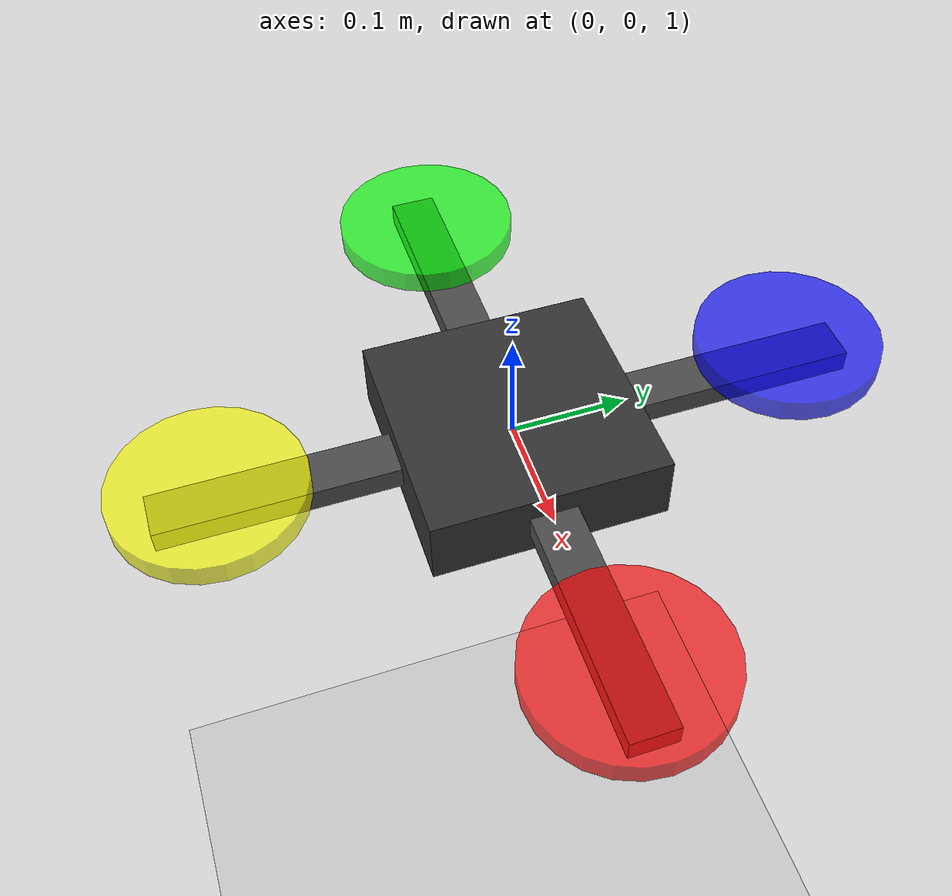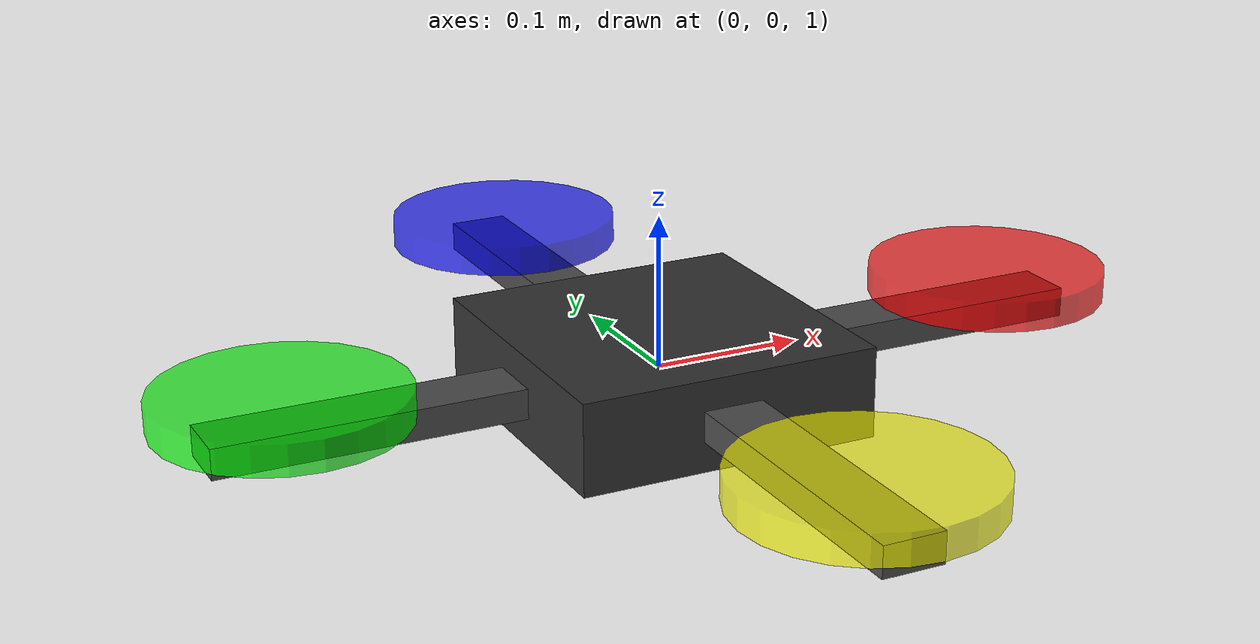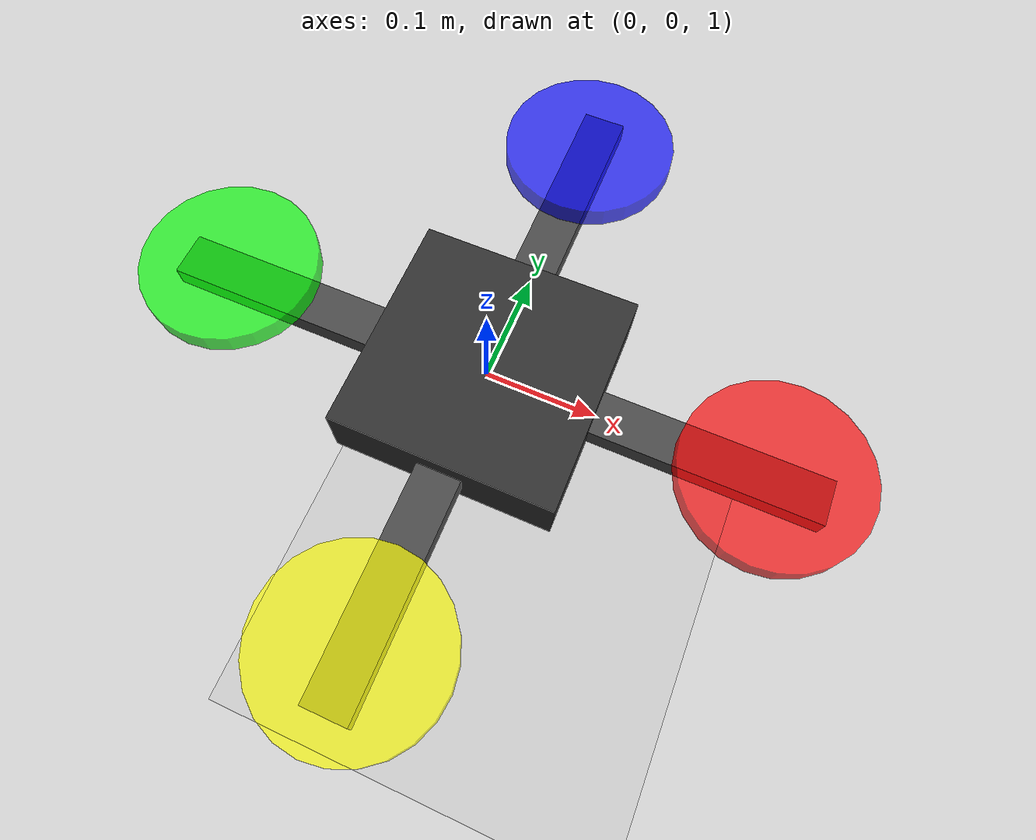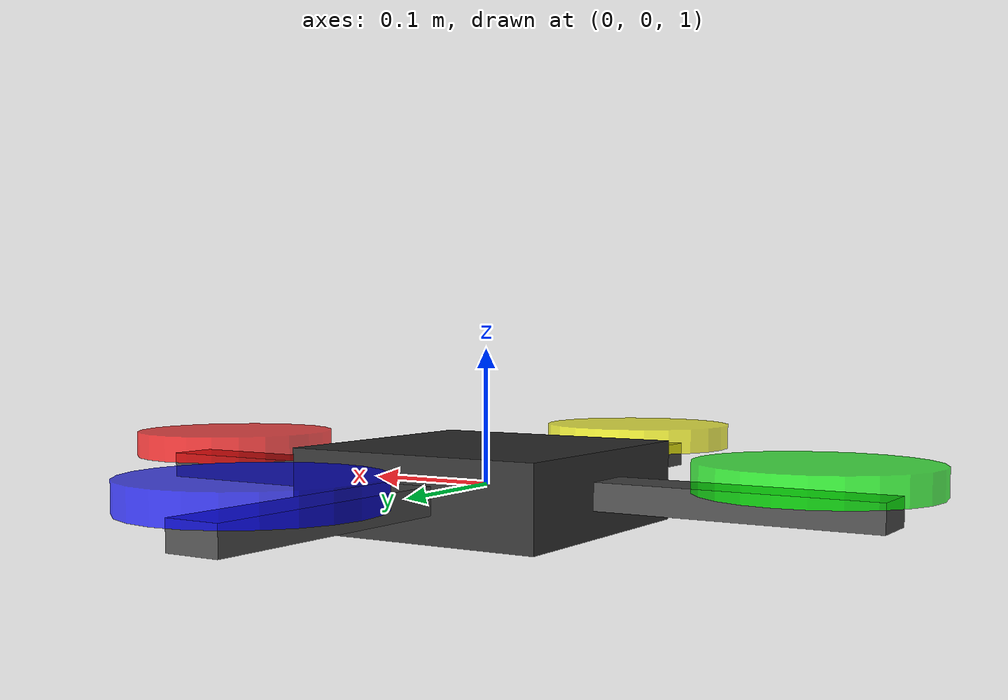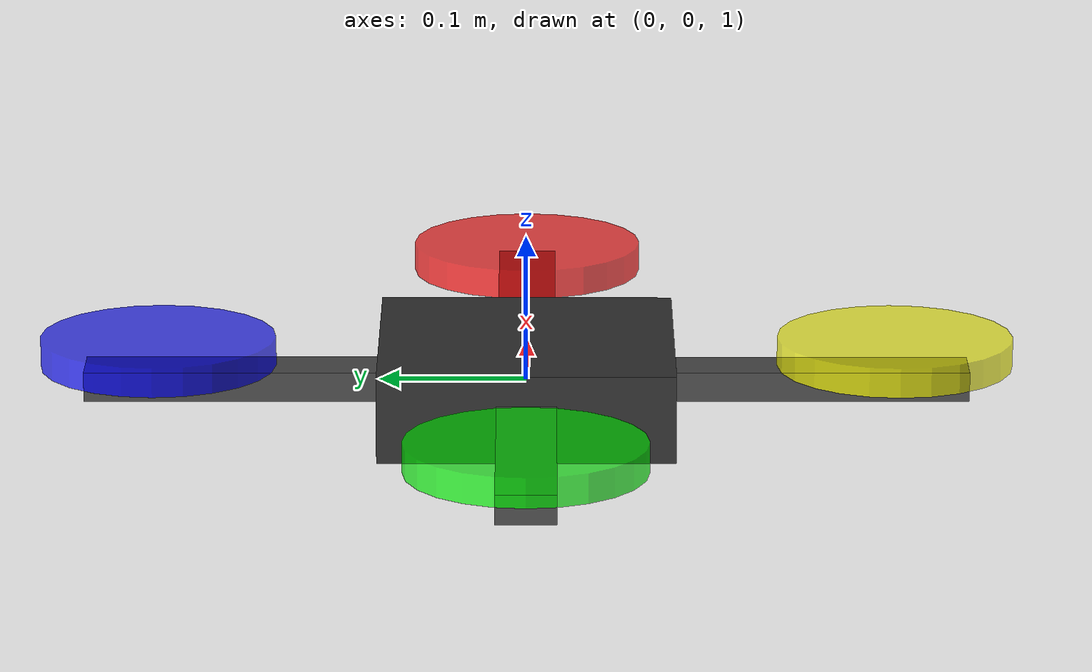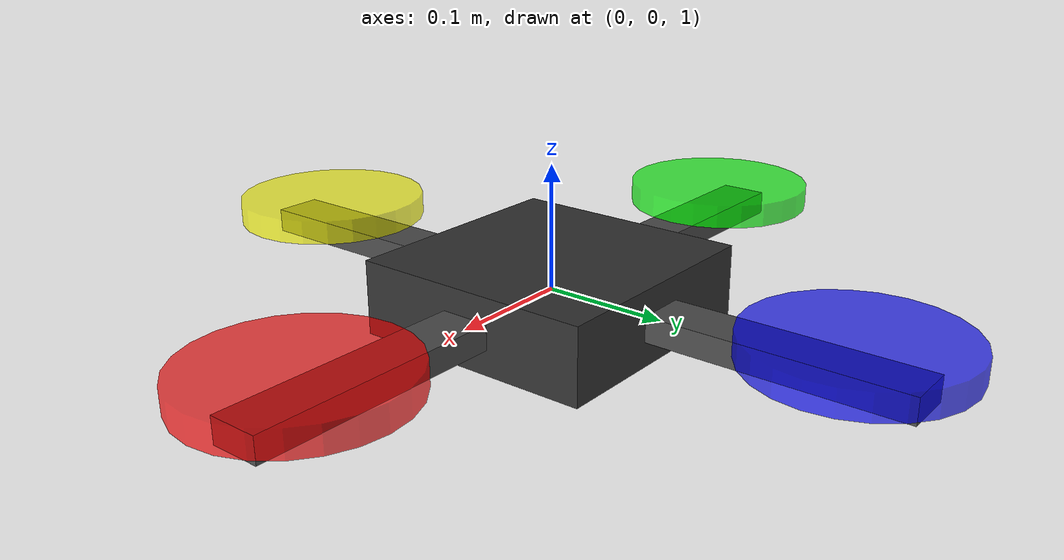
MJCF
<mujoco>
  <option gravity="0 0 -9.81" timestep="0.002"/>

  <worldbody>
    <!-- Ground plane -->
    <geom name="ground" type="plane" size="20 20 0.1" rgba="0.8 0.8 0.8 1"/>

    <!-- Drone body -->
    <body name="drone" pos="0 0 1">
      <freejoint/>

      <!-- Main body (central box) -->
      <geom name="body" type="box" size="0.1 0.1 0.03" rgba="0.2 0.2 0.2 1" mass="0.5"/>

      <!-- Four arms -->
      <geom name="arm1" type="box" size="0.15 0.02 0.01" pos="0.15 0 0" rgba="0.3 0.3 0.3 1" mass="0.05"/>
      <geom name="arm2" type="box" size="0.15 0.02 0.01" pos="-0.15 0 0" rgba="0.3 0.3 0.3 1" mass="0.05"/>
      <geom name="arm3" type="box" size="0.02 0.15 0.01" pos="0 0.15 0" rgba="0.3 0.3 0.3 1" mass="0.05"/>
      <geom name="arm4" type="box" size="0.02 0.15 0.01" pos="0 -0.15 0" rgba="0.3 0.3 0.3 1" mass="0.05"/>

      <!-- Four rotors (visual only) -->
      <geom name="rotor1" type="cylinder" size="0.08 0.01" pos="0.25 0 0.02" rgba="1 0 0 0.7" mass="0.02"/>
      <geom name="rotor2" type="cylinder" size="0.08 0.01" pos="-0.25 0 0.02" rgba="0 1 0 0.7" mass="0.02"/>
      <geom name="rotor3" type="cylinder" size="0.08 0.01" pos="0 0.25 0.02" rgba="0 0 1 0.7" mass="0.02"/>
      <geom name="rotor4" type="cylinder" size="0.08 0.01" pos="0 -0.25 0.02" rgba="1 1 0 0.7" mass="0.02"/>

      <!-- Sites for applying thrust forces -->
      <site name="thrust1" pos="0.25 0 0" size="0.01"/>
      <site name="thrust2" pos="-0.25 0 0" size="0.01"/>
      <site name="thrust3" pos="0 0.25 0" size="0.01"/>
      <site name="thrust4" pos="0 -0.25 0" size="0.01"/>
    </body>
  </worldbody>

  <actuator>
    <!-- Four thrust forces applied at each rotor location -->
    <motor name="motor1" gear="0 0 1" site="thrust1" ctrllimited="true" ctrlrange="0 5"/>
    <motor name="motor2" gear="0 0 1" site="thrust2" ctrllimited="true" ctrlrange="0 5"/>
    <motor name="motor3" gear="0 0 1" site="thrust3" ctrllimited="true" ctrlrange="0 5"/>
    <motor name="motor4" gear="0 0 1" site="thrust4" ctrllimited="true" ctrlrange="0 5"/>
  </actuator>
</mujoco>
